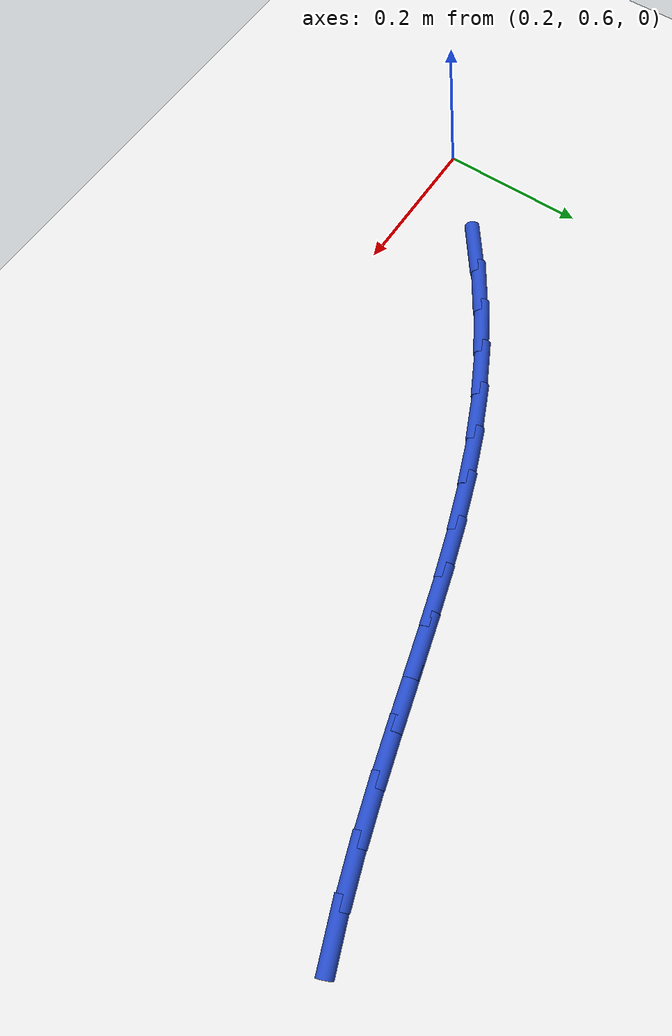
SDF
<sdf version="1.6">
 <world name="default">
  <model name="ground_plane">
   <static>1</static>
   <link name="link">
    <collision name="collision">
     <geometry><plane><normal>0 0 1</normal><size>100 100</size></plane></geometry>
     <surface><friction><ode><mu>100</mu><mu2>50</mu2></ode></friction></surface>
    </collision>
    <visual name="visual">
     <cast_shadows>0</cast_shadows>
     <geometry><plane><normal>0 0 1</normal><size>100 100</size></plane></geometry>
     <material>
      <script><uri>file://media/materials/scripts/gazebo.material</uri><name>Gazebo/WhiteGlow</name></script>
     </material>
    </visual>
   </link>
  </model>
  <model name="line">
   <link name="link_13">
    <pose>0.32465573568457223 0.7156185471412877 0.01 0 1.57 0.6643421371250073</pose>
    <collision name="collision">
     <geometry><cylinder><radius>0.01</radius><length>0.08</length></cylinder></geometry>
    </collision>
    <visual name="visual">
     <material>
      <script><name>Gazebo/Blue</name><uri>file://media/materials/scripts/gazebo.material</uri></script>
     </material>
     <geometry><cylinder><radius>0.01</radius><length>0.08</length></cylinder></geometry>
    </visual>
   </link>
   <link name="link_14">
    <pose>0.37423081094993693 0.7544400973960208 0.01 0 1.57 0.6057253054090442</pose>
    <collision name="collision">
     <geometry><cylinder><radius>0.01</radius><length>0.08</length></cylinder></geometry>
    </collision>
    <visual name="visual">
     <material>
      <script><name>Gazebo/Blue</name><uri>file://media/materials/scripts/gazebo.material</uri></script>
     </material>
     <geometry><cylinder><radius>0.01</radius><length>0.08</length></cylinder></geometry>
    </visual>
   </link>
   <link name="link_15">
    <pose>0.4259362264450042 0.7902499728095597 0.01 0 1.57 0.5490071453879904</pose>
    <collision name="collision">
     <geometry><cylinder><radius>0.01</radius><length>0.08</length></cylinder></geometry>
    </collision>
    <visual name="visual">
     <material>
      <script><name>Gazebo/Blue</name><uri>file://media/materials/scripts/gazebo.material</uri></script>
     </material>
     <geometry><cylinder><radius>0.01</radius><length>0.08</length></cylinder></geometry>
    </visual>
   </link>
   <link name="link_16">
    <pose>0.4794043257672452 0.8229585466706482 0.01 0 1.57 0.493601643494919</pose>
    <collision name="collision">
     <geometry><cylinder><radius>0.01</radius><length>0.08</length></cylinder></geometry>
    </collision>
    <visual name="visual">
     <material>
      <script><name>Gazebo/Blue</name><uri>file://media/materials/scripts/gazebo.material</uri></script>
     </material>
     <geometry><cylinder><radius>0.01</radius><length>0.08</length></cylinder></geometry>
    </visual>
   </link>
   <link name="link_17">
    <pose>0.5342674525141304 0.8524761922680293 0.01 0 1.57 0.4389246837638997</pose>
    <collision name="collision">
     <geometry><cylinder><radius>0.01</radius><length>0.08</length></cylinder></geometry>
    </collision>
    <visual name="visual">
     <material>
      <script><name>Gazebo/Blue</name><uri>file://media/materials/scripts/gazebo.material</uri></script>
     </material>
     <geometry><cylinder><radius>0.01</radius><length>0.08</length></cylinder></geometry>
    </visual>
   </link>
   <link name="link_18">
    <pose>0.5901587651250321 0.8787153497678744 0.01 0 1.57 0.387329858157164</pose>
    <collision name="collision">
     <geometry><cylinder><radius>0.01</radius><length>0.08</length></cylinder></geometry>
    </collision>
    <visual name="visual">
     <material>
      <script><name>Gazebo/Blue</name><uri>file://media/materials/scripts/gazebo.material</uri></script>
     </material>
     <geometry><cylinder><radius>0.01</radius><length>0.08</length></cylinder></geometry>
    </visual>
   </link>
   <link name="link_19">
    <pose>0.646803883248459 0.9018229907047095 0.01 0 1.57 0.3446611597525456</pose>
    <collision name="collision">
     <geometry><cylinder><radius>0.01</radius><length>0.08</length></cylinder></geometry>
    </collision>
    <visual name="visual">
     <material>
      <script><name>Gazebo/Blue</name><uri>file://media/materials/scripts/gazebo.material</uri></script>
     </material>
     <geometry><cylinder><radius>0.01</radius><length>0.08</length></cylinder></geometry>
    </visual>
   </link>
   <link name="link_20">
    <pose>0.7041047914877665 0.9223934430188023 0.01 0 1.57 0.3121577097871921</pose>
    <collision name="collision">
     <geometry><cylinder><radius>0.01</radius><length>0.08</length></cylinder></geometry>
    </collision>
    <visual name="visual">
     <material>
      <script><name>Gazebo/Blue</name><uri>file://media/materials/scripts/gazebo.material</uri></script>
     </material>
     <geometry><cylinder><radius>0.01</radius><length>0.08</length></cylinder></geometry>
    </visual>
   </link>
   <link name="link_21">
    <pose>0.7619832969385311 0.9410713151547343 0.01 0 1.57 0.29014447610557104</pose>
    <collision name="collision">
     <geometry><cylinder><radius>0.01</radius><length>0.08</length></cylinder></geometry>
    </collision>
    <visual name="visual">
     <material>
      <script><name>Gazebo/Blue</name><uri>file://media/materials/scripts/gazebo.material</uri></script>
     </material>
     <geometry><cylinder><radius>0.01</radius><length>0.08</length></cylinder></geometry>
    </visual>
   </link>
   <link name="link_22">
    <pose>0.820361206696329 0.9585012155570865 0.01 0 1.57 0.2787208128686455</pose>
    <collision name="collision">
     <geometry><cylinder><radius>0.01</radius><length>0.08</length></cylinder></geometry>
    </collision>
    <visual name="visual">
     <material>
      <script><name>Gazebo/Blue</name><uri>file://media/materials/scripts/gazebo.material</uri></script>
     </material>
     <geometry><cylinder><radius>0.01</radius><length>0.08</length></cylinder></geometry>
    </visual>
   </link>
   <link name="link_23">
    <pose>0.8791603278567368 0.9753277526704403 0.01 0 1.57 0.2778310659574483</pose>
    <collision name="collision">
     <geometry><cylinder><radius>0.01</radius><length>0.08</length></cylinder></geometry>
    </collision>
    <visual name="visual">
     <material>
      <script><name>Gazebo/Blue</name><uri>file://media/materials/scripts/gazebo.material</uri></script>
     </material>
     <geometry><cylinder><radius>0.01</radius><length>0.08</length></cylinder></geometry>
    </visual>
   </link>
   <link name="link_24">
    <pose>0.9383024675153311 0.9921955349393767 0.01 0 1.57 0.2873058824701665</pose>
    <collision name="collision">
     <geometry><cylinder><radius>0.01</radius><length>0.08</length></cylinder></geometry>
    </collision>
    <visual name="visual">
     <material>
      <script><name>Gazebo/Blue</name><uri>file://media/materials/scripts/gazebo.material</uri></script>
     </material>
     <geometry><cylinder><radius>0.01</radius><length>0.08</length></cylinder></geometry>
    </visual>
   </link>
   <link name="link_25">
    <pose>0.9977094327676879 1.0097491708084771 0.01 0 1.57 0.3068713964779973</pose>
    <collision name="collision">
     <geometry><cylinder><radius>0.01</radius><length>0.08</length></cylinder></geometry>
    </collision>
    <visual name="visual">
     <material>
      <script><name>Gazebo/Blue</name><uri>file://media/materials/scripts/gazebo.material</uri></script>
     </material>
     <geometry><cylinder><radius>0.01</radius><length>0.08</length></cylinder></geometry>
    </visual>
   </link>
   <link name="link_26">
    <pose>1.057303030709384 1.0286332687223232 0.01 0 1.57 0.3361293970072738</pose>
    <collision name="collision">
     <geometry><cylinder><radius>0.01</radius><length>0.08</length></cylinder></geometry>
    </collision>
    <visual name="visual">
     <material>
      <script><name>Gazebo/Blue</name><uri>file://media/materials/scripts/gazebo.material</uri></script>
     </material>
     <geometry><cylinder><radius>0.01</radius><length>0.08</length></cylinder></geometry>
    </visual>
   </link>
   <link name="link_27">
    <pose>1.117005068435996 1.0494924371254961 0.01 0 1.57 0.3744928173488519</pose>
    <collision name="collision">
     <geometry><cylinder><radius>0.01</radius><length>0.08</length></cylinder></geometry>
    </collision>
    <visual name="visual">
     <material>
      <script><name>Gazebo/Blue</name><uri>file://media/materials/scripts/gazebo.material</uri></script>
     </material>
     <geometry><cylinder><radius>0.01</radius><length>0.08</length></cylinder></geometry>
    </visual>
   </link>
  </model>
 </world>
</sdf>
